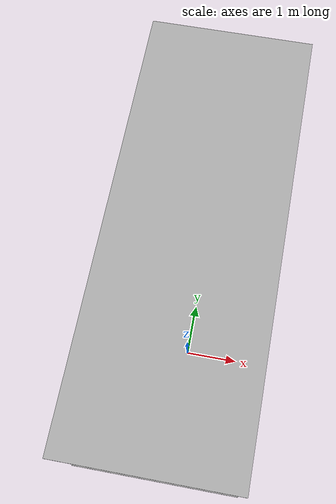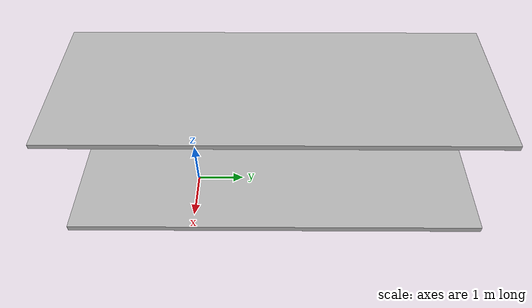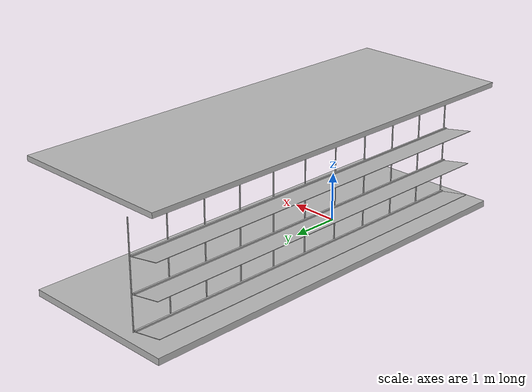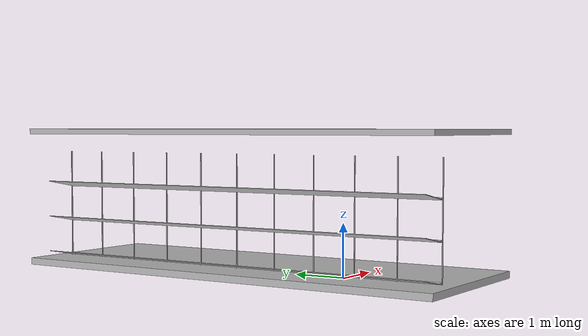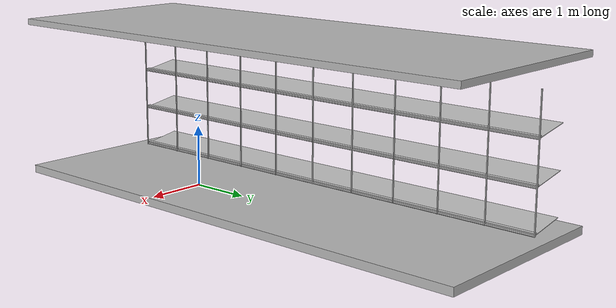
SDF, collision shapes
<sdf version="1.6">
  <model name="shipping_container_ariac">
    <static>true</static>
    <link name="link">
      <collision name="collision_floor">
        <pose>-0.18 1.715 0.1 0 0 0</pose>
        <max_contacts>10</max_contacts>
        <geometry>
          <box>
            <size>3.25 8.61 0.13</size>
          </box>
        </geometry>
      </collision>

      <collision name="collision_roof">
        <pose>-0.18 1.715 2.65 0 0 0</pose>
        <max_contacts>10</max_contacts>
        <geometry>
          <box>
            <size>3.25 8.61 0.1</size>
          </box>
        </geometry>
      </collision>

      <collision name="vertical_bar_front_0">
        <pose>-0.885 -2.33 1.2 0 0 0</pose>
        <max_contacts>10</max_contacts>
        <geometry>
          <box>
            <size>0.02 0.015 2.1</size>
          </box>
        </geometry>
      </collision>

      <collision name="vertical_bar_front_1">
        <pose>-0.885 -1.517 1.2 0 0 0</pose>
        <max_contacts>10</max_contacts>
        <geometry>
          <box>
            <size>0.02 0.015 2.1</size>
          </box>
        </geometry>
      </collision>

      <collision name="vertical_bar_front_2">
        <pose>-0.885 -0.705 1.2 0 0 0</pose>
        <max_contacts>10</max_contacts>
        <geometry>
          <box>
            <size>0.02 0.015 2.1</size>
          </box>
        </geometry>
      </collision>

      <collision name="vertical_bar_front_3">
        <pose>-0.885 0.105 1.2 0 0 0</pose>
        <max_contacts>10</max_contacts>
        <geometry>
          <box>
            <size>0.02 0.015 2.1</size>
          </box>
        </geometry>
      </collision>

      <collision name="vertical_bar_front_4">
        <pose>-0.885 0.92 1.2 0 0 0</pose>
        <max_contacts>10</max_contacts>
        <geometry>
          <box>
            <size>0.02 0.015 2.1</size>
          </box>
        </geometry>
      </collision>

      <collision name="vertical_bar_front_5">
        <pose>-0.885 1.73 1.2 0 0 0</pose>
        <max_contacts>10</max_contacts>
        <geometry>
          <box>
            <size>0.02 0.015 2.1</size>
          </box>
        </geometry>
      </collision>

      <collision name="vertical_bar_front_6">
        <pose>-0.885 2.54 1.2 0 0 0</pose>
        <max_contacts>10</max_contacts>
        <geometry>
          <box>
            <size>0.02 0.015 2.1</size>
          </box>
        </geometry>
      </collision>

      <collision name="vertical_bar_front_7">
        <pose>-0.885 3.35 1.2 0 0 0</pose>
        <max_contacts>10</max_contacts>
        <geometry>
          <box>
            <size>0.02 0.015 2.1</size>
          </box>
        </geometry>
      </collision>

      <collision name="vertical_bar_front_8">
        <pose>-0.885 4.165 1.2 0 0 0</pose>
        <max_contacts>10</max_contacts>
        <geometry>
          <box>
            <size>0.02 0.015 2.1</size>
          </box>
        </geometry>
      </collision>

      <collision name="vertical_bar_front_9">
        <pose>-0.885 4.98 1.2 0 0 0</pose>
        <max_contacts>10</max_contacts>
        <geometry>
          <box>
            <size>0.02 0.015 2.1</size>
          </box>
        </geometry>
      </collision>

      <collision name="vertical_bar_front_10">
        <pose>-0.885 5.78 1.2 0 0 0</pose>
        <max_contacts>10</max_contacts>
        <geometry>
          <box>
            <size>0.02 0.015 2.1</size>
          </box>
        </geometry>
      </collision>

      <collision name="horizontal_shelf_0">
        <pose>-1.21 1.72 0.235 0 0.18 0</pose>
        <max_contacts>10</max_contacts>
        <geometry>
          <box>
            <size>0.68 8.1 0.01</size>
          </box>
        </geometry>
      </collision>

      <collision name="horizontal_shelf_0_front">
        <pose>-0.931 1.72 0.2 0 0.18 0</pose>
        <max_contacts>10</max_contacts>
        <geometry>
          <box>
            <size>0.047 8.1 0.03</size>
          </box>
        </geometry>
      </collision>

      <collision name="horizontal_shelf_1">
        <pose>-1.21 1.72 0.925 0 0.18 0</pose>
        <max_contacts>10</max_contacts>
        <geometry>
          <box>
            <size>0.68 8.1 0.01</size>
          </box>
        </geometry>
      </collision>

      <collision name="horizontal_shelf_1_front">
        <pose>-0.931 1.72 0.89 0 0.18 0</pose>
        <max_contacts>10</max_contacts>
        <geometry>
          <box>
            <size>0.047 8.1 0.03</size>
          </box>
        </geometry>
      </collision>

      <collision name="horizontal_shelf_2">
        <pose>-1.21 1.72 1.615 0 0.18 0</pose>
        <max_contacts>10</max_contacts>
        <geometry>
          <box>
            <size>0.68 8.1 0.01</size>
          </box>
        </geometry>
      </collision>

      <collision name="horizontal_shelf_2_front">
        <pose>-0.931 1.72 1.58 0 0.18 0</pose>
        <max_contacts>10</max_contacts>
        <geometry>
          <box>
            <size>0.047 8.1 0.03</size>
          </box>
        </geometry>
      </collision>

      <visual name="visual">
        <geometry>
          <mesh>
            <scale>1.3 0.7 1.0</scale>
            <uri>model://shipping_container_ariac/meshes/ShippingContainer_Textured.obj</uri>
          </mesh>
        </geometry>
      </visual>
    </link>
  </model>
</sdf>
